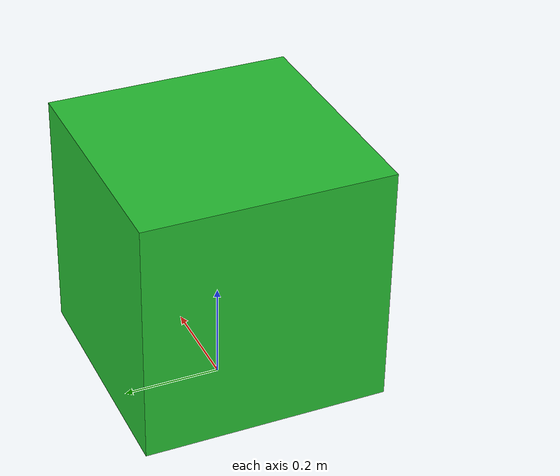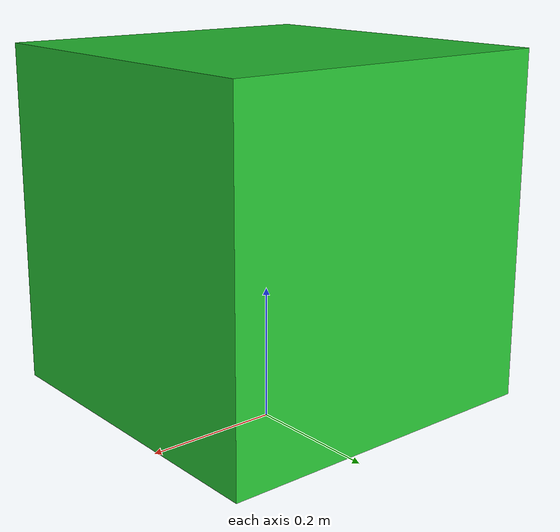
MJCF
<mujoco model="baseline_hexahedron">
  <compiler angle="radian"/>
  <asset>
    <material name="steel" rgba="0.15 0.75 0.20 1" specular="0.6" shininess="0.5"/>
  </asset>
  <worldbody>
    <body name="bot" pos="0 0 0.30">
      <freejoint name="root"/>
      <geom name="hex_geom" type="box" size="0.25 0.25 0.25"
            material="steel" mass="200"
            friction="0.6 0.005 0.0001"/>
    </body>
  </worldbody>
  <actuator/>
</mujoco>
